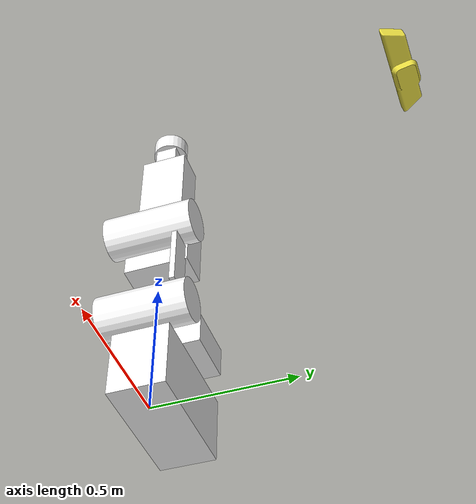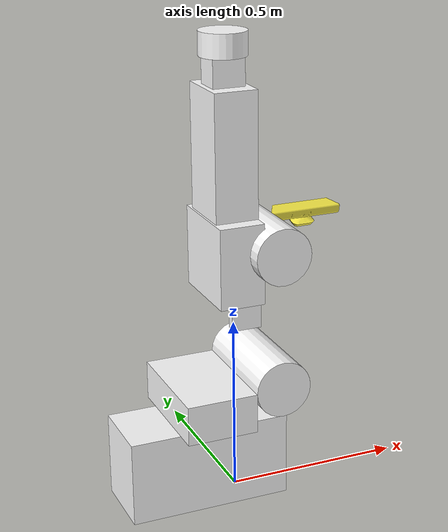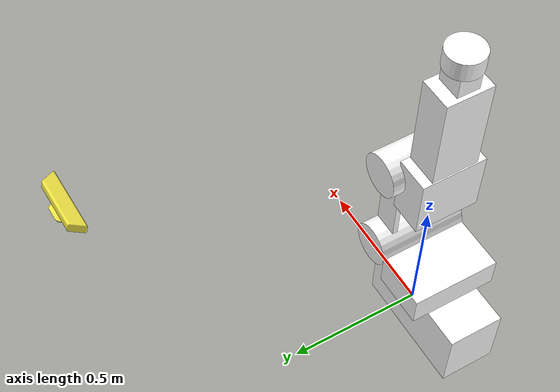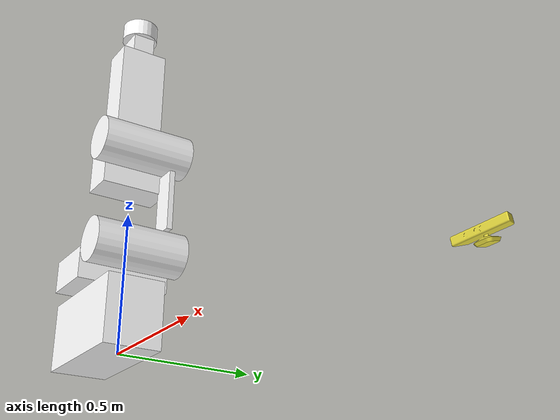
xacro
<?xml version="1.0"?>
<robot xmlns:xacro="http://ros.org/wiki/xacro" name="mitsubishi_arm">
  <property name="table_y_length" value="1.0" />
  <property name="camera_table_y_offset" value="0.265" />
  <property name="camera_table_x_offset" value="1.0" />

  <!-- Import all Gazebo-customization elements, including Gazebo colors -->
  <xacro:include filename="$(find mitsubishi_arm_description)/urdf/mitsubishi_rv_6sdl_arm.gazebo" />

  <!-- Import Rviz colors -->
  <xacro:include filename="$(find mitsubishi_arm_description)/urdf/materials.xacro" />

  <!-- ros_control plugin -->
  <gazebo>
    <plugin name="gazebo_ros_control" filename="libgazebo_ros_control.so">
      <robotNamespace>/mitsubishi_arm</robotNamespace>
      <robotSimType>gazebo_ros_control/DefaultRobotHWSim</robotSimType>
    </plugin>
  </gazebo>

  <gazebo>
    <plugin name="gazebo_ros_joint_trajectory" filename="libgazebo_ros_joint_pose_trajectory.so">
      <robotNamespace>/mitsubishi_arm</robotNamespace>
      <alwaysOn>true</alwaysOn>
      <updateRate>100.0</updateRate>
    </plugin>
  </gazebo>

  <!-- Used for fixing robot to Gazebo 'base_link' -->
  <link name="world"/>

  <joint name="fixed" type="fixed">
    <parent link="world"/>
    <child link="base_link"/>
  </joint>

  <!-- LINKS   -->
  <xacro:include filename="$(find mitsubishi_arm_description)/urdf/mitsubishi_rv_6sdl_arm.xacro" />
  <!-- **********************barret hand part (old)****************************** -->
  <!-- xacro:include filename="$(find bhand_description)/urdf/bh280.urdf.xacro" / -->
`

  <!-- **********************barret hand part (new)****************************** -->
`

  <!-- original is 0.085 but we have the torque sensor...-->
  <!-- end_effector -->
 <!-- original is 0.085 but we have the torque sensor...-->
<!-- original is 0.085 but we have the torque sensor...-->
<!-- original is 0.085 but we have the torque sensor...-->

   <!-- Kinect -->

  <!-- kinect to base link -->

  <!-- Kinect -->

  <!-- kinect to base link -->

  <!-- Kinect Camera Location (Nominally 0) -->
  <property name="cal_kinect_x" value="0.0" />
  <property name="cal_kinect_y" value="0.0" />
  <property name="cal_kinect_z" value="0.0" />
  <property name="cal_kinect_roll" value="0.0" />
  <property name="cal_kinect_pitch" value="0.0" />
  <property name="cal_kinect_yaw" value="0.0" />
  <xacro:include filename="$(find mitsubishi_arm_description)/urdf/sensors.urdf.xacro" />

  <!-- Transformation from the arm base to the kinect base link -->
  <xacro:kinect_camera_v0 name="camera" parent="base_link" >
    <!-- origin xyz="0.537566 -0.979771 0.436556" rpy="0.00848366 0.240007 1.585"/ --> <!-- camera is to the mitsubishi left -->
    <origin xyz="0.691031 0.995553 0.428516" rpy="0.00123993 0.231118 -1.56538"/> <!-- camera is to the mitsubishi right (previous location) -->
  </xacro:kinect_camera_v0 >

</robot>

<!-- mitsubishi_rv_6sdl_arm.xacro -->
<robot xmlns:xacro="http://www.ros.org/wiki/xacro">
  <property name="PI" value="3.1415926535897931" />
  <property name="offset_from_limit" value="5.0" />

  <!-- base_link -->
  <link name="base_link" >
    <visual>
      <geometry>
	<box size="0.455 .204 .239"/>
      </geometry>
      <origin xyz="-0.1125 0 .1185"/>
      <material name="orange">
        <color rgba="1 1 1 1"/>
      </material>
    </visual>
    <collision>
      <geometry>
	<box size="0.455 .204 .239"/>
      </geometry>
      <origin xyz="-0.1125 0 .1185"/>
    </collision>
    <inertial>
      <origin xyz="0 0 1" rpy="0 0 0"/>
      <mass value="0.01"/>
      <inertia
        ixx="1.0" ixy="0.0" ixz="0.0"
        iyy="1.0" iyz="0.0"
        izz="1.0"/>
    </inertial>
  </link>

  <joint name="j1" type="revolute">
    <axis xyz="0 0 1"/>
    <limit effort="1000.0" lower="${(-170+offset_from_limit)*PI/180}" upper="${(170-offset_from_limit)*PI/180}" velocity="0.2"/>
    <parent link="base_link"/>
    <child link="shoulder_block"/>
    <origin xyz="0 0 0.239"/>
   <dynamics damping="100.0" friction="100.0" />
  </joint>

  <!-- shoulder_block -->
  <link name="shoulder_block">
    <visual>
      <geometry>
	<box size="0.200 .327 .111"/>
      </geometry>
      <origin xyz="-.100 0 0.0555"/>
      <material name="orange">
        <color rgba="1 1 1 1"/>
      </material>
    </visual>
    <collision>
      <geometry>
	<box size="0.200 .327 .111"/>
      </geometry>
      <origin xyz="-.100 0 0.0555"/>
    </collision>
    <inertial>
      <origin xyz="0 0 1" rpy="0 0 0"/>
      <mass value="0.01"/>
      <inertia
        ixx="1.0" ixy="0.0" ixz="0.0"
        iyy="1.0" iyz="0.0"
        izz="1.0"/>
    </inertial>
  </link>

  <joint name="j2" type="revolute">
    <axis xyz="0 0 1"/>
    <limit effort="1000.0" lower="${-92*PI/180}" upper="${(135-offset_from_limit)*PI/180}" velocity="0.2"/>
    <parent link="shoulder_block"/>
    <child link="shoulder"/>
    <origin xyz="0.079 0 0.111" rpy="1.57079632679 0 3.14159265359"/>
   <dynamics damping="100.0" friction="100.0" />
  </joint>

  <!-- shoulder -->
  <link name="shoulder">
    <visual>
      <geometry>
	<cylinder length="0.327" radius="0.079"/>
      </geometry>
      <origin xyz="0 0 0"/>
      <material name="orange">
        <color rgba="1 1 1 1"/>
      </material>
    </visual>
    <collision>
      <geometry>
        <cylinder length="0.327" radius="0.079"/>
      </geometry>
      <origin xyz="0 0 0"/>
    </collision>
    <inertial>
      <origin xyz="0 0 1" rpy="0 0 0"/>
      <mass value="0.01"/>
      <inertia
        ixx="1.0" ixy="0.0" ixz="0.0"
        iyy="1.0" iyz="0.0"
        izz="1.0"/>
    </inertial>
  </link>

  <joint name="fixed_joint_1" type="fixed">
    <axis xyz="0 0 1"/>
    <parent link="shoulder"/>
    <child link="upper_arm"/>
    <origin xyz="0 0.079 0"/>
   <dynamics damping="100.0" friction="100.0" />
  </joint>

  <!-- upper_arm -->
  <link name="upper_arm">
    <visual>
      <geometry>
	<box size="0.090 0.222 0.02"/>
      </geometry>
      <origin xyz="0 0.111 0.102"/>
      <material name="orange">
        <color rgba="1 1 1 1"/>
      </material>
    </visual>
    <collision>
      <geometry>
	<box size="0.090 0.222 0.02"/>
      </geometry>
      <origin xyz="0 0.111 0.102"/>
    </collision>
    <inertial>
      <origin xyz="0 0 1" rpy="0 0 0"/>
      <mass value="0.01"/>
      <inertia
        ixx="1.0" ixy="0.0" ixz="0.0"
        iyy="1.0" iyz="0.0"
        izz="1.0"/>
    </inertial>
  </link>

  <joint name="j3" type="revolute">
    <axis xyz="0 0 1"/>
    <limit effort="1000.0" lower="${(-129+offset_from_limit)*PI/180}" upper="${(166-offset_from_limit)*PI/180}" velocity="0.2"/>
    <parent link="upper_arm"/>
    <child link="elbow"/>
    <origin xyz="0 0.301 0" rpy="0 0 1.57"/>
   <dynamics damping="100.0" friction="100.0" />
  </joint>

  <!-- elbow -->
  <link name="elbow">
    <visual>
      <geometry>
	<cylinder length="0.327" radius="0.079"/>
      </geometry>
      <origin xyz="0 0 0"/>
      <material name="orange">
        <color rgba="1 1 1 1"/>
      </material>
    </visual>
    <collision>
      <geometry>
        <cylinder length="0.327" radius="0.079"/>
      </geometry>
      <origin xyz="0 0 0"/>
    </collision>
    <inertial>
      <origin xyz="0 0 1" rpy="0 0 0"/>
      <mass value="0.01"/>
      <inertia
        ixx="1.0" ixy="0.0" ixz="0.0"
        iyy="1.0" iyz="0.0"
        izz="1.0"/>
    </inertial>
  </link>

  <joint name="fixed_joint_2" type="fixed">
    <parent link="elbow"/>
    <child link="elbow_block"/>
    <origin xyz="0 -0.100 0"/>
   <dynamics damping="100.0" friction="100.0" />
  </joint>

  <!-- elbow_block -->
  <link name="elbow_block">
    <visual>
      <geometry>
	<box size="0.225 .126 .239"/>
      </geometry>
      <origin xyz="-0.0275 0 0"/>
      <material name="orange">
        <color rgba="1 1 1 1"/>
      </material>
    </visual>
    <collision>
      <geometry>
	<box size="0.225 .126 .239"/>
      </geometry>
      <origin xyz="-0.0275 0 0"/>
    </collision>
    <inertial>
      <origin xyz="0 0 1" rpy="0 0 0"/>
      <mass value="0.01"/>
      <inertia
        ixx="1.0" ixy="0.0" ixz="0.0"
        iyy="1.0" iyz="0.0"
        izz="1.0"/>
    </inertial>
  </link>

  <joint name="j4" type="revolute">
    <axis xyz="0 0 1"/>
    <limit effort="1000.0" lower="${(-160+offset_from_limit)*PI/180}" upper="${(160-offset_from_limit)*PI/180}" velocity="0.2"/>
    <parent link="elbow_block"/>
    <child link="fore_arm"/>
    <origin xyz="0.079 0 0"  rpy="0 1.5707963267 0"/>
   <dynamics damping="100.0" friction="100.0" />
  </joint>

  <!-- fore_arm -->
  <link name="fore_arm">
    <visual>
      <geometry>
	<box size="0.170 .120 .346"/>
      </geometry>
      <origin xyz="0 0 0.1815"/>
      <material name="orange">
        <color rgba="1 1 1 1"/>
      </material>
    </visual>
    <collision>
      <geometry>
	<box size="0.170 .120 .346"/>
      </geometry>
      <origin xyz="0 0 0.1815"/>
    </collision>
    <inertial>
      <origin xyz="0 0 1" rpy="0 0 0"/>
      <mass value="0.01"/>
      <inertia
        ixx="1.0" ixy="0.0" ixz="0.0"
        iyy="1.0" iyz="0.0"
        izz="1.0"/>
    </inertial>
  </link>

  <joint name="j5" type="revolute">
    <axis xyz="0 0 1"/>
    <limit effort="1000.0" lower="${(-110+offset_from_limit)*PI/180}" upper="${(110-offset_from_limit)*PI/180}" velocity="0.2"/>
    <parent link="fore_arm"/>
    <child link="wrist"/>
    <origin xyz="0 0 0.346"  rpy="0.0 -1.5707963267 0"/>
   <dynamics damping="100.0" friction="100.0" />
  </joint>

  <!-- wrist -->
  <link name="wrist">
    <visual>
     <geometry>
	<box size="0.170 .09 .080"/>
      </geometry>
      <origin xyz="0 0 0"/>
      <material name="orange">
        <color rgba="1 1 1 1"/>
      </material>
    </visual>
    <collision>
     <geometry>
	<box size="0.170 .09 .080"/>
      </geometry>
      <origin xyz="0 0 0"/>
    </collision>
    <inertial>
      <origin xyz="0 0 1" rpy="0 0 0"/>
      <mass value="0.01"/>
      <inertia
        ixx="1.0" ixy="0.0" ixz="0.0"
        iyy="1.0" iyz="0.0"
        izz="1.0"/>
    </inertial>
  </link>

  <joint name="j6" type="revolute">
    <axis xyz="0 0 1"/>
    <limit effort="1000.0" lower="${(-180+offset_from_limit)*PI/180}" upper="${(180-offset_from_limit)*PI/180}" velocity="0.2"/><!-- instead of -180 is -360 , 180 is 360 -->
    <parent link="wrist"/>
    <child link="torque_sensor"/>
    <origin xyz="0.085 0 0"  rpy="0 1.5707963267 0"/>
   <dynamics damping="10.0" friction="100.0" />
  </joint>

  <!-- torque_sensor -->
  <link name="torque_sensor">
    <visual>
     <geometry>
	<cylinder  length="0.065" radius="0.065"/>
      </geometry>
      <origin xyz="0 0 0.0325"/>
      <material name="orange">
        <color rgba="1 1 1 1"/>
      </material>
    </visual>
    <collision>
     <geometry>
	<cylinder  length="0.065" radius="0.065"/>
      </geometry>
      <origin xyz="0 0 0.0325"/>
      <material name="orange">
        <color rgba="1 1 1 1"/>
      </material>
    </collision>
    <inertial>
      <origin xyz="0 0 1" rpy="0 0 0"/>
      <mass value="0.01"/>
      <inertia
        ixx="1.0" ixy="0.0" ixz="0.0"
        iyy="1.0" iyz="0.0"
        izz="1.0"/>
    </inertial>
  </link>

  <joint name="torque_sensor_joint" type="fixed">
    <axis xyz="0 0 1"/>
    <limit effort="1000.0" lower="${(-360+offset_from_limit)*PI/180}" upper="${(360-offset_from_limit)*PI/180}" velocity="0.2"/>
    <parent link="torque_sensor"/>
    <child link="end_effector"/>
    <origin xyz="0 0 0.065"  rpy="0 0 0"/> <!-- original is 0.085 but we have the torque sensor...-->
   <dynamics damping="100.0" friction="100.0" />
  </joint>

  <!-- end_effector -->
  <link name="end_effector">
    <inertial>
      <origin xyz="0 0 1" rpy="0 0 0"/>
      <mass value="0.01"/>
      <inertia
        ixx="1.0" ixy="0.0" ixz="0.0"
        iyy="1.0" iyz="0.0"
        izz="1.0"/>
    </inertial>
  </link>

  <transmission name="tran1">
    <type>transmission_interface/SimpleTransmission</type>
    <joint name="j1">
      <hardwareInterface>PositionJointInterface</hardwareInterface>
    </joint>
    <actuator name="motor1">
      <hardwareInterface>EffortJointInterface</hardwareInterface>
      <mechanicalReduction>1</mechanicalReduction>
    </actuator>
  </transmission>

  <transmission name="tran2">
    <type>transmission_interface/SimpleTransmission</type>
    <joint name="j2">
      <hardwareInterface>PositionJointInterface</hardwareInterface>
    </joint>
    <actuator name="motor2">
      <hardwareInterface>EffortJointInterface</hardwareInterface>
      <mechanicalReduction>1</mechanicalReduction>
    </actuator>
  </transmission>

  <transmission name="tran3">
    <type>transmission_interface/SimpleTransmission</type>
    <joint name="j3">
      <hardwareInterface>PositionJointInterface</hardwareInterface>
    </joint>
    <actuator name="motor3">
      <hardwareInterface>EffortJointInterface</hardwareInterface>
      <mechanicalReduction>1</mechanicalReduction>
    </actuator>
  </transmission>

  <transmission name="tran4">
    <type>transmission_interface/SimpleTransmission</type>
    <joint name="j4">
      <hardwareInterface>PositionJointInterface</hardwareInterface>
    </joint>
    <actuator name="motor4">
      <hardwareInterface>EffortJointInterface</hardwareInterface>
      <mechanicalReduction>1</mechanicalReduction>
    </actuator>
  </transmission>

  <transmission name="tran5">
    <type>transmission_interface/SimpleTransmission</type>
    <joint name="j5">
      <hardwareInterface>PositionJointInterface</hardwareInterface>
    </joint>
    <actuator name="motor5">
      <hardwareInterface>EffortJointInterface</hardwareInterface>
      <mechanicalReduction>1</mechanicalReduction>
    </actuator>
  </transmission>

  <transmission name="tran6">
    <type>transmission_interface/SimpleTransmission</type>
    <joint name="j6">
      <hardwareInterface>PositionJointInterface</hardwareInterface>
    </joint>
    <actuator name="motor6">
      <hardwareInterface>EffortJointInterface</hardwareInterface>
      <mechanicalReduction>1</mechanicalReduction>
    </actuator>
  </transmission>

</robot>

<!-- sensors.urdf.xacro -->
<root xmlns:sensor="http://playerstage.sourceforge.net/gazebo/xmlschema/#sensor"
      xmlns:controller="http://playerstage.sourceforge.net/gazebo/xmlschema/#controller"
      xmlns:interface="http://playerstage.sourceforge.net/gazebo/xmlschema/#interface"
      xmlns:xacro="http://ros.org/wiki/xacro">

  <xacro:include filename="$(find mitsubishi_arm_description)/urdf/sensors.gazebo.xacro" />

  <xacro:macro name="kinect_camera_v0" params="name parent *origin">
    <joint name="${name}_frame_joint" type="fixed">
      <insert_block name="origin" />
      <parent link="${parent}"/>
      <child link="${name}_link"/>
    </joint>
    <link name="${name}_link">

      <inertial>
        <mass value="0.1" />
        <origin xyz="0 0 0" rpy="0 0 0"/>
        <inertia ixx="0.01"  ixy="0.0"  ixz="0.0"
                 iyy="0.01"  iyz="0.0"
                 izz="0.01" />
      </inertial>

      <visual>
	<origin xyz="0.0 0.012 0" rpy="0 0 0"/>
        <geometry>
          <mesh filename="package://pr2_description/meshes/sensors/kinect_v0/kinect.dae" scale="0.001 0.001 0.001" />
        </geometry>
      </visual>

      <collision>
        <origin xyz="0.0 0.012 0" rpy="0 0 0"/>
        <geometry>
          <mesh filename="package://pr2_description/meshes/sensors/kinect_v0/kinect.dae" scale="0.001 0.001 0.001" />
        </geometry>
      </collision>

    </link>

    <joint name="${name}_optical_joint" type="fixed">
      <origin xyz="${cal_kinect_x}           ${cal_kinect_y}         ${cal_kinect_z}"
                rpy="${-M_PI/2+cal_kinect_roll} ${0.0+cal_kinect_pitch} ${-M_PI/2+cal_kinect_yaw}" />
      <parent link="${name}_link"/>
      <child link="${name}_optical_frame"/>
    </joint>

    <link name="${name}_optical_frame"/>

    <!-- extensions -->
    <xacro:kinect_camera_gazebo_v0 name="${name}" />
  </xacro:macro>

</root>

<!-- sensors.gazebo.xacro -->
<root xmlns:xacro="http://ros.org/wiki/xacro">
  <property name="M_PI" value="3.141592653"/>
<xacro:macro name="kinect_camera_gazebo_v0" params="name">
  <gazebo reference="${name}_link">
    <sensor type="depth" name="${name}_link_sensor">
      <always_on>true</always_on>
      <update_rate>20.0</update_rate>
      <camera>
        <horizontal_fov>${57.0*M_PI/180.0}</horizontal_fov>
        <image>
          <format>R8G8B8</format>
          <width>640</width>
          <height>480</height>
        </image>
        <clip>
          <near>0.01</near>
          <far>5</far>
        </clip>
      </camera>
      <plugin name="${name}_frame_controller" filename="libgazebo_ros_openni_kinect.so">
        <alwaysOn>true</alwaysOn>
        <updateRate>20.0</updateRate>
        <cameraName>${name}</cameraName>
        <imageTopicName>${name}/ir/image_raw</imageTopicName>
        <cameraInfoTopicName>${name}/ir/camera_info</cameraInfoTopicName>
        <depthImageTopicName>${name}/depth/image_raw</depthImageTopicName>
        <depthImageCameraInfoTopicName>${name}/depth/camera_info</depthImageCameraInfoTopicName>
        <pointCloudTopicName>${name}/depth/points</pointCloudTopicName>
        <frameName>${name}_optical_frame</frameName>
        <pointCloudCutoff>0.5</pointCloudCutoff>
        <distortionK1>0.0000000</distortionK1>
        <distortionK2>0.0000000</distortionK2>
        <distortionK3>0.0000000</distortionK3>
        <distortionT1>0.0000000</distortionT1>
        <distortionT2>0.0000000</distortionT2>
        <CxPrime>0</CxPrime>
        <Cx>0</Cx>
        <Cy>0</Cy>
        <focalLength>0</focalLength>
        <hackBaseline>0</hackBaseline>
      </plugin>
    </sensor>
    <sensor type="depth" name="${name}_link_sensor">
      <always_on>true</always_on>
      <update_rate>20.0</update_rate>
      <camera>
        <horizontal_fov>${57.0*M_PI/180.0}</horizontal_fov>
        <image>
          <format>R8G8B8</format>
          <width>640</width>
          <height>480</height>
        </image>
        <clip>
          <near>0.01</near>
          <far>5</far>
        </clip>
      </camera>
      <plugin name="${name}_frame_controller" filename="libgazebo_ros_openni_kinect.so">
        <alwaysOn>true</alwaysOn>
        <updateRate>20.0</updateRate>
        <cameraName>${name}</cameraName>
        <imageTopicName>${name}/rgb/image_raw</imageTopicName>
        <cameraInfoTopicName>${name}/rgb/camera_info</cameraInfoTopicName>
        <depthImageTopicName>${name}/depth/image_raw</depthImageTopicName>
        <depthImageCameraInfoTopicName>${name}/depth/camera_info</depthImageCameraInfoTopicName>
        <pointCloudTopicName>${name}/rgb/points</pointCloudTopicName>
        <frameName>${name}_optical_frame</frameName>
        <pointCloudCutoff>0.5</pointCloudCutoff>
        <distortionK1>0.0000000</distortionK1>
        <distortionK2>0.0000000</distortionK2>
        <distortionK3>0.0000000</distortionK3>
        <distortionT1>0.0000000</distortionT1>
        <distortionT2>0.0000000</distortionT2>
        <CxPrime>0</CxPrime>
        <Cx>0</Cx>
        <Cy>0</Cy>
        <focalLength>0</focalLength>
        <hackBaseline>0</hackBaseline>
      </plugin>
    </sensor>
  </gazebo>

</xacro:macro>

</root>
